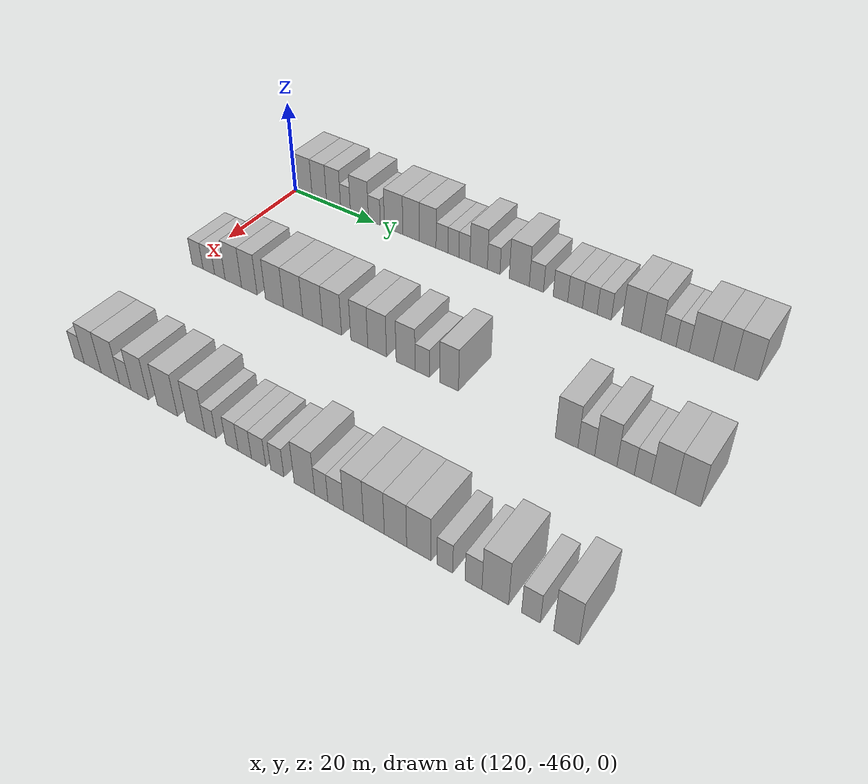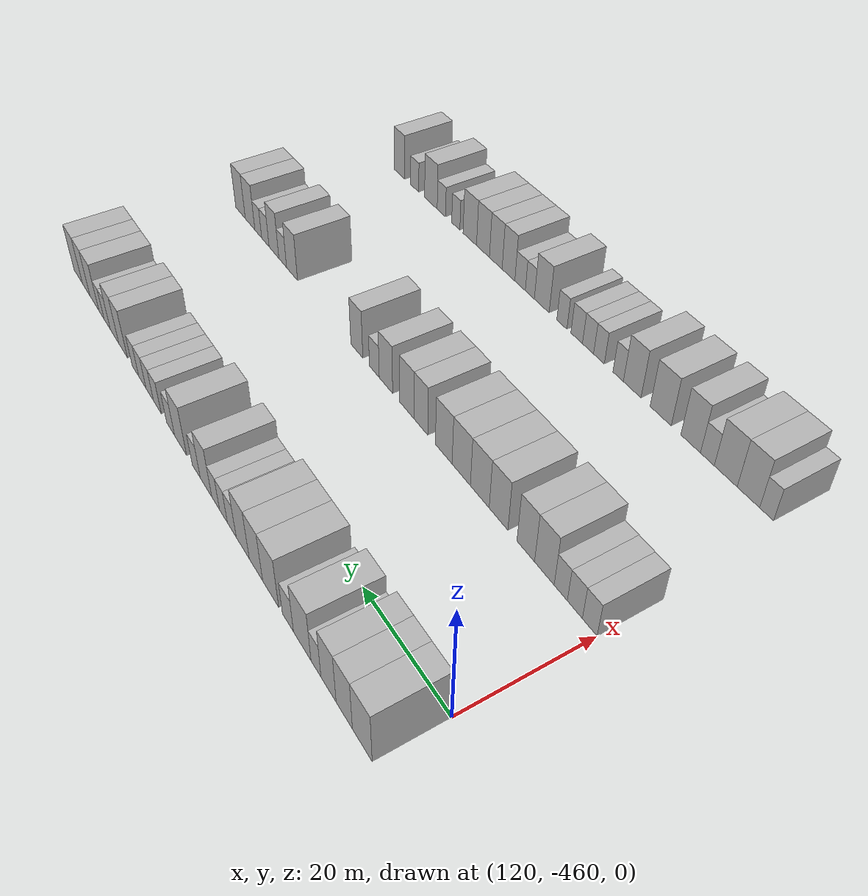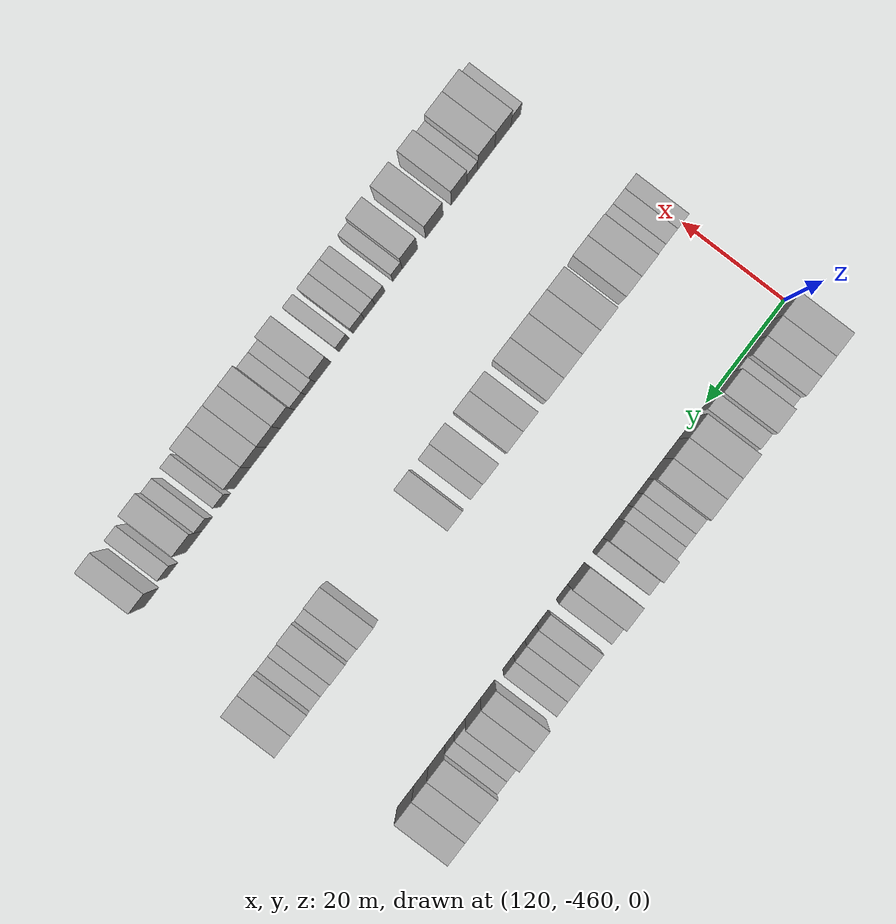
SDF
<sdf version="1.6">
 <world name="default">
  <model name="building_675">
   <static>1</static>
   <pose>115.0000 -457.8308 0 0.000000 0.000000 0.000000</pose>
   <link name="link">
    <pose>0 0 4.50 0 0 0</pose>
    <collision name="collision"><geometry><box><size>10.0000 4.3384 9.0000</size></box></geometry></collision>
    <visual name="visual">
     <cast_shadows>0</cast_shadows>
     <geometry><box><size>10.0000 4.3384 9.0000</size></box></geometry>
     <material>
      <script>
       <uri>model://HANNAS_wall/materials/scripts</uri>
       <uri>model://HANNAS_wall/materials/textures</uri>
       <name>vrc/HANNAS_wall</name>
      </script>
     </material>
    </visual>
   </link>
  </model>
  <model name="building_676">
   <static>1</static>
   <pose>115.0000 -453.7887 0 0.000000 0.000000 0.000000</pose>
   <link name="link">
    <pose>0 0 4.50 0 0 0</pose>
    <collision name="collision"><geometry><box><size>10.0000 3.7456 9.0000</size></box></geometry></collision>
    <visual name="visual">
     <cast_shadows>0</cast_shadows>
     <geometry><box><size>10.0000 3.7456 9.0000</size></box></geometry>
     <material>
      <script>
       <uri>model://HANNAS_wall/materials/scripts</uri>
       <uri>model://HANNAS_wall/materials/textures</uri>
       <name>vrc/HANNAS_wall</name>
      </script>
     </material>
    </visual>
   </link>
  </model>
  <model name="building_677">
   <static>1</static>
   <pose>115.0000 -450.1026 0 0.000000 0.000000 0.000000</pose>
   <link name="link">
    <pose>0 0 4.50 0 0 0</pose>
    <collision name="collision"><geometry><box><size>10.0000 3.6267 9.0000</size></box></geometry></collision>
    <visual name="visual">
     <cast_shadows>0</cast_shadows>
     <geometry><box><size>10.0000 3.6267 9.0000</size></box></geometry>
     <material>
      <script>
       <uri>model://HANNAS_wall/materials/scripts</uri>
       <uri>model://HANNAS_wall/materials/textures</uri>
       <name>vrc/HANNAS_wall</name>
      </script>
     </material>
    </visual>
   </link>
  </model>
  <model name="building_678">
   <static>1</static>
   <pose>115.0000 -447.0632 0 0.000000 0.000000 0.000000</pose>
   <link name="link">
    <pose>0 0 3.00 0 0 0</pose>
    <collision name="collision"><geometry><box><size>10.0000 2.4520 6.0000</size></box></geometry></collision>
    <visual name="visual">
     <cast_shadows>0</cast_shadows>
     <geometry><box><size>10.0000 2.4520 6.0000</size></box></geometry>
     <material>
      <script>
       <uri>model://HANNAS_wall/materials/scripts</uri>
       <uri>model://HANNAS_wall/materials/textures</uri>
       <name>vrc/HANNAS_wall</name>
      </script>
     </material>
    </visual>
   </link>
  </model>
  <model name="building_679">
   <static>1</static>
   <pose>115.0000 -443.5883 0 0.000000 0.000000 0.000000</pose>
   <link name="link">
    <pose>0 0 4.50 0 0 0</pose>
    <collision name="collision"><geometry><box><size>10.0000 4.4978 9.0000</size></box></geometry></collision>
    <visual name="visual">
     <cast_shadows>0</cast_shadows>
     <geometry><box><size>10.0000 4.4978 9.0000</size></box></geometry>
     <material>
      <script>
       <uri>model://HANNAS_wall/materials/scripts</uri>
       <uri>model://HANNAS_wall/materials/textures</uri>
       <name>vrc/HANNAS_wall</name>
      </script>
     </material>
    </visual>
   </link>
  </model>
  <model name="building_680">
   <static>1</static>
   <pose>115.0000 -439.8775 0 0.000000 0.000000 0.000000</pose>
   <link name="link">
    <pose>0 0 3.00 0 0 0</pose>
    <collision name="collision"><geometry><box><size>10.0000 2.9237 6.0000</size></box></geometry></collision>
    <visual name="visual">
     <cast_shadows>0</cast_shadows>
     <geometry><box><size>10.0000 2.9237 6.0000</size></box></geometry>
     <material>
      <script>
       <uri>model://HANNAS_wall/materials/scripts</uri>
       <uri>model://HANNAS_wall/materials/textures</uri>
       <name>vrc/HANNAS_wall</name>
      </script>
     </material>
    </visual>
   </link>
  </model>
  <model name="building_681">
   <static>1</static>
   <pose>115.0000 -435.1933 0 0.000000 0.000000 0.000000</pose>
   <link name="link">
    <pose>0 0 4.50 0 0 0</pose>
    <collision name="collision"><geometry><box><size>10.0000 4.4448 9.0000</size></box></geometry></collision>
    <visual name="visual">
     <cast_shadows>0</cast_shadows>
     <geometry><box><size>10.0000 4.4448 9.0000</size></box></geometry>
     <material>
      <script>
       <uri>model://HANNAS_wall/materials/scripts</uri>
       <uri>model://HANNAS_wall/materials/textures</uri>
       <name>vrc/HANNAS_wall</name>
      </script>
     </material>
    </visual>
   </link>
  </model>
  <model name="building_682">
   <static>1</static>
   <pose>115.0000 -431.0422 0 0.000000 0.000000 0.000000</pose>
   <link name="link">
    <pose>0 0 4.50 0 0 0</pose>
    <collision name="collision"><geometry><box><size>10.0000 3.8574 9.0000</size></box></geometry></collision>
    <visual name="visual">
     <cast_shadows>0</cast_shadows>
     <geometry><box><size>10.0000 3.8574 9.0000</size></box></geometry>
     <material>
      <script>
       <uri>model://HANNAS_wall/materials/scripts</uri>
       <uri>model://HANNAS_wall/materials/textures</uri>
       <name>vrc/HANNAS_wall</name>
      </script>
     </material>
    </visual>
   </link>
  </model>
  <model name="building_683">
   <static>1</static>
   <pose>115.0000 -427.1518 0 0.000000 0.000000 0.000000</pose>
   <link name="link">
    <pose>0 0 4.50 0 0 0</pose>
    <collision name="collision"><geometry><box><size>10.0000 3.9233 9.0000</size></box></geometry></collision>
    <visual name="visual">
     <cast_shadows>0</cast_shadows>
     <geometry><box><size>10.0000 3.9233 9.0000</size></box></geometry>
     <material>
      <script>
       <uri>model://HANNAS_wall/materials/scripts</uri>
       <uri>model://HANNAS_wall/materials/textures</uri>
       <name>vrc/HANNAS_wall</name>
      </script>
     </material>
    </visual>
   </link>
  </model>
  <model name="building_684">
   <static>1</static>
   <pose>115.0000 -423.8245 0 0.000000 0.000000 0.000000</pose>
   <link name="link">
    <pose>0 0 3.00 0 0 0</pose>
    <collision name="collision"><geometry><box><size>10.0000 2.7313 6.0000</size></box></geometry></collision>
    <visual name="visual">
     <cast_shadows>0</cast_shadows>
     <geometry><box><size>10.0000 2.7313 6.0000</size></box></geometry>
     <material>
      <script>
       <uri>model://HANNAS_wall/materials/scripts</uri>
       <uri>model://HANNAS_wall/materials/textures</uri>
       <name>vrc/HANNAS_wall</name>
      </script>
     </material>
    </visual>
   </link>
  </model>
  <model name="building_685">
   <static>1</static>
   <pose>115.0000 -421.2231 0 0.000000 0.000000 0.000000</pose>
   <link name="link">
    <pose>0 0 3.00 0 0 0</pose>
    <collision name="collision"><geometry><box><size>10.0000 2.4715 6.0000</size></box></geometry></collision>
    <visual name="visual">
     <cast_shadows>0</cast_shadows>
     <geometry><box><size>10.0000 2.4715 6.0000</size></box></geometry>
     <material>
      <script>
       <uri>model://HANNAS_wall/materials/scripts</uri>
       <uri>model://HANNAS_wall/materials/textures</uri>
       <name>vrc/HANNAS_wall</name>
      </script>
     </material>
    </visual>
   </link>
  </model>
  <model name="building_686">
   <static>1</static>
   <pose>115.0000 -418.7302 0 0.000000 0.000000 0.000000</pose>
   <link name="link">
    <pose>0 0 3.00 0 0 0</pose>
    <collision name="collision"><geometry><box><size>10.0000 2.5144 6.0000</size></box></geometry></collision>
    <visual name="visual">
     <cast_shadows>0</cast_shadows>
     <geometry><box><size>10.0000 2.5144 6.0000</size></box></geometry>
     <material>
      <script>
       <uri>model://HANNAS_wall/materials/scripts</uri>
       <uri>model://HANNAS_wall/materials/textures</uri>
       <name>vrc/HANNAS_wall</name>
      </script>
     </material>
    </visual>
   </link>
  </model>
  <model name="building_687">
   <static>1</static>
   <pose>115.0000 -415.5576 0 0.000000 0.000000 0.000000</pose>
   <link name="link">
    <pose>0 0 4.50 0 0 0</pose>
    <collision name="collision"><geometry><box><size>10.0000 3.8307 9.0000</size></box></geometry></collision>
    <visual name="visual">
     <cast_shadows>0</cast_shadows>
     <geometry><box><size>10.0000 3.8307 9.0000</size></box></geometry>
     <material>
      <script>
       <uri>model://HANNAS_wall/materials/scripts</uri>
       <uri>model://HANNAS_wall/materials/textures</uri>
       <name>vrc/HANNAS_wall</name>
      </script>
     </material>
    </visual>
   </link>
  </model>
  <model name="building_688">
   <static>1</static>
   <pose>115.0000 -412.2653 0 0.000000 0.000000 0.000000</pose>
   <link name="link">
    <pose>0 0 3.00 0 0 0</pose>
    <collision name="collision"><geometry><box><size>10.0000 2.7541 6.0000</size></box></geometry></collision>
    <visual name="visual">
     <cast_shadows>0</cast_shadows>
     <geometry><box><size>10.0000 2.7541 6.0000</size></box></geometry>
     <material>
      <script>
       <uri>model://HANNAS_wall/materials/scripts</uri>
       <uri>model://HANNAS_wall/materials/textures</uri>
       <name>vrc/HANNAS_wall</name>
      </script>
     </material>
    </visual>
   </link>
  </model>
  <model name="building_689">
   <static>1</static>
   <pose>115.0000 -406.7517 0 0.000000 0.000000 0.000000</pose>
   <link name="link">
    <pose>0 0 4.50 0 0 0</pose>
    <collision name="collision"><geometry><box><size>10.0000 4.2730 9.0000</size></box></geometry></collision>
    <visual name="visual">
     <cast_shadows>0</cast_shadows>
     <geometry><box><size>10.0000 4.2730 9.0000</size></box></geometry>
     <material>
      <script>
       <uri>model://HANNAS_wall/materials/scripts</uri>
       <uri>model://HANNAS_wall/materials/textures</uri>
       <name>vrc/HANNAS_wall</name>
      </script>
     </material>
    </visual>
   </link>
  </model>
  <model name="building_690">
   <static>1</static>
   <pose>115.0000 -403.1297 0 0.000000 0.000000 0.000000</pose>
   <link name="link">
    <pose>0 0 3.00 0 0 0</pose>
    <collision name="collision"><geometry><box><size>10.0000 2.9712 6.0000</size></box></geometry></collision>
    <visual name="visual">
     <cast_shadows>0</cast_shadows>
     <geometry><box><size>10.0000 2.9712 6.0000</size></box></geometry>
     <material>
      <script>
       <uri>model://HANNAS_wall/materials/scripts</uri>
       <uri>model://HANNAS_wall/materials/textures</uri>
       <name>vrc/HANNAS_wall</name>
      </script>
     </material>
    </visual>
   </link>
  </model>
  <model name="building_691">
   <static>1</static>
   <pose>115.0000 -398.1478 0 0.000000 0.000000 0.000000</pose>
   <link name="link">
    <pose>0 0 3.00 0 0 0</pose>
    <collision name="collision"><geometry><box><size>10.0000 2.9924 6.0000</size></box></geometry></collision>
    <visual name="visual">
     <cast_shadows>0</cast_shadows>
     <geometry><box><size>10.0000 2.9924 6.0000</size></box></geometry>
     <material>
      <script>
       <uri>model://HANNAS_wall/materials/scripts</uri>
       <uri>model://HANNAS_wall/materials/textures</uri>
       <name>vrc/HANNAS_wall</name>
      </script>
     </material>
    </visual>
   </link>
  </model>
  <model name="building_692">
   <static>1</static>
   <pose>115.0000 -395.1696 0 0.000000 0.000000 0.000000</pose>
   <link name="link">
    <pose>0 0 3.00 0 0 0</pose>
    <collision name="collision"><geometry><box><size>10.0000 2.9640 6.0000</size></box></geometry></collision>
    <visual name="visual">
     <cast_shadows>0</cast_shadows>
     <geometry><box><size>10.0000 2.9640 6.0000</size></box></geometry>
     <material>
      <script>
       <uri>model://HANNAS_wall/materials/scripts</uri>
       <uri>model://HANNAS_wall/materials/textures</uri>
       <name>vrc/HANNAS_wall</name>
      </script>
     </material>
    </visual>
   </link>
  </model>
  <model name="building_693">
   <static>1</static>
   <pose>115.0000 -392.2177 0 0.000000 0.000000 0.000000</pose>
   <link name="link">
    <pose>0 0 3.00 0 0 0</pose>
    <collision name="collision"><geometry><box><size>10.0000 2.9399 6.0000</size></box></geometry></collision>
    <visual name="visual">
     <cast_shadows>0</cast_shadows>
     <geometry><box><size>10.0000 2.9399 6.0000</size></box></geometry>
     <material>
      <script>
       <uri>model://HANNAS_wall/materials/scripts</uri>
       <uri>model://HANNAS_wall/materials/textures</uri>
       <name>vrc/HANNAS_wall</name>
      </script>
     </material>
    </visual>
   </link>
  </model>
  <model name="building_694">
   <static>1</static>
   <pose>115.0000 -389.3699 0 0.000000 0.000000 0.000000</pose>
   <link name="link">
    <pose>0 0 3.00 0 0 0</pose>
    <collision name="collision"><geometry><box><size>10.0000 2.7556 6.0000</size></box></geometry></collision>
    <visual name="visual">
     <cast_shadows>0</cast_shadows>
     <geometry><box><size>10.0000 2.7556 6.0000</size></box></geometry>
     <material>
      <script>
       <uri>model://HANNAS_wall/materials/scripts</uri>
       <uri>model://HANNAS_wall/materials/textures</uri>
       <name>vrc/HANNAS_wall</name>
      </script>
     </material>
    </visual>
   </link>
  </model>
  <model name="building_695">
   <static>1</static>
   <pose>115.0000 -384.1373 0 0.000000 0.000000 0.000000</pose>
   <link name="link">
    <pose>0 0 4.50 0 0 0</pose>
    <collision name="collision"><geometry><box><size>10.0000 3.7096 9.0000</size></box></geometry></collision>
    <visual name="visual">
     <cast_shadows>0</cast_shadows>
     <geometry><box><size>10.0000 3.7096 9.0000</size></box></geometry>
     <material>
      <script>
       <uri>model://HANNAS_wall/materials/scripts</uri>
       <uri>model://HANNAS_wall/materials/textures</uri>
       <name>vrc/HANNAS_wall</name>
      </script>
     </material>
    </visual>
   </link>
  </model>
  <model name="building_696">
   <static>1</static>
   <pose>115.0000 -380.4037 0 0.000000 0.000000 0.000000</pose>
   <link name="link">
    <pose>0 0 4.50 0 0 0</pose>
    <collision name="collision"><geometry><box><size>10.0000 3.7576 9.0000</size></box></geometry></collision>
    <visual name="visual">
     <cast_shadows>0</cast_shadows>
     <geometry><box><size>10.0000 3.7576 9.0000</size></box></geometry>
     <material>
      <script>
       <uri>model://HANNAS_wall/materials/scripts</uri>
       <uri>model://HANNAS_wall/materials/textures</uri>
       <name>vrc/HANNAS_wall</name>
      </script>
     </material>
    </visual>
   </link>
  </model>
  <model name="building_697">
   <static>1</static>
   <pose>115.0000 -377.1109 0 0.000000 0.000000 0.000000</pose>
   <link name="link">
    <pose>0 0 3.00 0 0 0</pose>
    <collision name="collision"><geometry><box><size>10.0000 2.8280 6.0000</size></box></geometry></collision>
    <visual name="visual">
     <cast_shadows>0</cast_shadows>
     <geometry><box><size>10.0000 2.8280 6.0000</size></box></geometry>
     <material>
      <script>
       <uri>model://HANNAS_wall/materials/scripts</uri>
       <uri>model://HANNAS_wall/materials/textures</uri>
       <name>vrc/HANNAS_wall</name>
      </script>
     </material>
    </visual>
   </link>
  </model>
  <model name="building_698">
   <static>1</static>
   <pose>115.0000 -374.4944 0 0.000000 0.000000 0.000000</pose>
   <link name="link">
    <pose>0 0 3.00 0 0 0</pose>
    <collision name="collision"><geometry><box><size>10.0000 2.4051 6.0000</size></box></geometry></collision>
    <visual name="visual">
     <cast_shadows>0</cast_shadows>
     <geometry><box><size>10.0000 2.4051 6.0000</size></box></geometry>
     <material>
      <script>
       <uri>model://HANNAS_wall/materials/scripts</uri>
       <uri>model://HANNAS_wall/materials/textures</uri>
       <name>vrc/HANNAS_wall</name>
      </script>
     </material>
    </visual>
   </link>
  </model>
  <model name="building_699">
   <static>1</static>
   <pose>115.0000 -371.1514 0 0.000000 0.000000 0.000000</pose>
   <link name="link">
    <pose>0 0 4.50 0 0 0</pose>
    <collision name="collision"><geometry><box><size>10.0000 4.2808 9.0000</size></box></geometry></collision>
    <visual name="visual">
     <cast_shadows>0</cast_shadows>
     <geometry><box><size>10.0000 4.2808 9.0000</size></box></geometry>
     <material>
      <script>
       <uri>model://HANNAS_wall/materials/scripts</uri>
       <uri>model://HANNAS_wall/materials/textures</uri>
       <name>vrc/HANNAS_wall</name>
      </script>
     </material>
    </visual>
   </link>
  </model>
  <model name="building_700">
   <static>1</static>
   <pose>115.0000 -367.1665 0 0.000000 0.000000 0.000000</pose>
   <link name="link">
    <pose>0 0 4.50 0 0 0</pose>
    <collision name="collision"><geometry><box><size>10.0000 3.6891 9.0000</size></box></geometry></collision>
    <visual name="visual">
     <cast_shadows>0</cast_shadows>
     <geometry><box><size>10.0000 3.6891 9.0000</size></box></geometry>
     <material>
      <script>
       <uri>model://HANNAS_wall/materials/scripts</uri>
       <uri>model://HANNAS_wall/materials/textures</uri>
       <name>vrc/HANNAS_wall</name>
      </script>
     </material>
    </visual>
   </link>
  </model>
  <model name="building_701">
   <static>1</static>
   <pose>115.0000 -363.2019 0 0.000000 0.000000 0.000000</pose>
   <link name="link">
    <pose>0 0 4.50 0 0 0</pose>
    <collision name="collision"><geometry><box><size>10.0000 4.2401 9.0000</size></box></geometry></collision>
    <visual name="visual">
     <cast_shadows>0</cast_shadows>
     <geometry><box><size>10.0000 4.2401 9.0000</size></box></geometry>
     <material>
      <script>
       <uri>model://HANNAS_wall/materials/scripts</uri>
       <uri>model://HANNAS_wall/materials/textures</uri>
       <name>vrc/HANNAS_wall</name>
      </script>
     </material>
    </visual>
   </link>
  </model>
  <model name="building_891">
   <static>1</static>
   <pose>145.0000 -458.6013 0 0.000000 0.000000 0.000000</pose>
   <link name="link">
    <pose>0 0 3.00 0 0 0</pose>
    <collision name="collision"><geometry><box><size>10.0000 2.7975 6.0000</size></box></geometry></collision>
    <visual name="visual">
     <cast_shadows>0</cast_shadows>
     <geometry><box><size>10.0000 2.7975 6.0000</size></box></geometry>
     <material>
      <script>
       <uri>model://HANNAS_wall/materials/scripts</uri>
       <uri>model://HANNAS_wall/materials/textures</uri>
       <name>vrc/HANNAS_wall</name>
      </script>
     </material>
    </visual>
   </link>
  </model>
  <model name="building_892">
   <static>1</static>
   <pose>145.0000 -455.7341 0 0.000000 0.000000 0.000000</pose>
   <link name="link">
    <pose>0 0 3.00 0 0 0</pose>
    <collision name="collision"><geometry><box><size>10.0000 2.9368 6.0000</size></box></geometry></collision>
    <visual name="visual">
     <cast_shadows>0</cast_shadows>
     <geometry><box><size>10.0000 2.9368 6.0000</size></box></geometry>
     <material>
      <script>
       <uri>model://HANNAS_wall/materials/scripts</uri>
       <uri>model://HANNAS_wall/materials/textures</uri>
       <name>vrc/HANNAS_wall</name>
      </script>
     </material>
    </visual>
   </link>
  </model>
  <model name="building_893">
   <static>1</static>
   <pose>145.0000 -452.9495 0 0.000000 0.000000 0.000000</pose>
   <link name="link">
    <pose>0 0 3.00 0 0 0</pose>
    <collision name="collision"><geometry><box><size>10.0000 2.6323 6.0000</size></box></geometry></collision>
    <visual name="visual">
     <cast_shadows>0</cast_shadows>
     <geometry><box><size>10.0000 2.6323 6.0000</size></box></geometry>
     <material>
      <script>
       <uri>model://HANNAS_wall/materials/scripts</uri>
       <uri>model://HANNAS_wall/materials/textures</uri>
       <name>vrc/HANNAS_wall</name>
      </script>
     </material>
    </visual>
   </link>
  </model>
  <model name="building_894">
   <static>1</static>
   <pose>145.0000 -449.6103 0 0.000000 0.000000 0.000000</pose>
   <link name="link">
    <pose>0 0 4.50 0 0 0</pose>
    <collision name="collision"><geometry><box><size>10.0000 4.0462 9.0000</size></box></geometry></collision>
    <visual name="visual">
     <cast_shadows>0</cast_shadows>
     <geometry><box><size>10.0000 4.0462 9.0000</size></box></geometry>
     <material>
      <script>
       <uri>model://HANNAS_wall/materials/scripts</uri>
       <uri>model://HANNAS_wall/materials/textures</uri>
       <name>vrc/HANNAS_wall</name>
      </script>
     </material>
    </visual>
   </link>
  </model>
  <model name="building_895">
   <static>1</static>
   <pose>145.0000 -445.7002 0 0.000000 0.000000 0.000000</pose>
   <link name="link">
    <pose>0 0 4.50 0 0 0</pose>
    <collision name="collision"><geometry><box><size>10.0000 3.7741 9.0000</size></box></geometry></collision>
    <visual name="visual">
     <cast_shadows>0</cast_shadows>
     <geometry><box><size>10.0000 3.7741 9.0000</size></box></geometry>
     <material>
      <script>
       <uri>model://HANNAS_wall/materials/scripts</uri>
       <uri>model://HANNAS_wall/materials/textures</uri>
       <name>vrc/HANNAS_wall</name>
      </script>
     </material>
    </visual>
   </link>
  </model>
  <model name="building_896">
   <static>1</static>
   <pose>145.0000 -439.6964 0 0.000000 0.000000 0.000000</pose>
   <link name="link">
    <pose>0 0 4.50 0 0 0</pose>
    <collision name="collision"><geometry><box><size>10.0000 4.2335 9.0000</size></box></geometry></collision>
    <visual name="visual">
     <cast_shadows>0</cast_shadows>
     <geometry><box><size>10.0000 4.2335 9.0000</size></box></geometry>
     <material>
      <script>
       <uri>model://HANNAS_wall/materials/scripts</uri>
       <uri>model://HANNAS_wall/materials/textures</uri>
       <name>vrc/HANNAS_wall</name>
      </script>
     </material>
    </visual>
   </link>
  </model>
  <model name="building_897">
   <static>1</static>
   <pose>145.0000 -435.3608 0 0.000000 0.000000 0.000000</pose>
   <link name="link">
    <pose>0 0 4.50 0 0 0</pose>
    <collision name="collision"><geometry><box><size>10.0000 4.4377 9.0000</size></box></geometry></collision>
    <visual name="visual">
     <cast_shadows>0</cast_shadows>
     <geometry><box><size>10.0000 4.4377 9.0000</size></box></geometry>
     <material>
      <script>
       <uri>model://HANNAS_wall/materials/scripts</uri>
       <uri>model://HANNAS_wall/materials/textures</uri>
       <name>vrc/HANNAS_wall</name>
      </script>
     </material>
    </visual>
   </link>
  </model>
  <model name="building_898">
   <static>1</static>
   <pose>145.0000 -430.9032 0 0.000000 0.000000 0.000000</pose>
   <link name="link">
    <pose>0 0 4.50 0 0 0</pose>
    <collision name="collision"><geometry><box><size>10.0000 4.4775 9.0000</size></box></geometry></collision>
    <visual name="visual">
     <cast_shadows>0</cast_shadows>
     <geometry><box><size>10.0000 4.4775 9.0000</size></box></geometry>
     <material>
      <script>
       <uri>model://HANNAS_wall/materials/scripts</uri>
       <uri>model://HANNAS_wall/materials/textures</uri>
       <name>vrc/HANNAS_wall</name>
      </script>
     </material>
    </visual>
   </link>
  </model>
  <model name="building_899">
   <static>1</static>
   <pose>145.0000 -426.5446 0 0.000000 0.000000 0.000000</pose>
   <link name="link">
    <pose>0 0 4.50 0 0 0</pose>
    <collision name="collision"><geometry><box><size>10.0000 4.2397 9.0000</size></box></geometry></collision>
    <visual name="visual">
     <cast_shadows>0</cast_shadows>
     <geometry><box><size>10.0000 4.2397 9.0000</size></box></geometry>
     <material>
      <script>
       <uri>model://HANNAS_wall/materials/scripts</uri>
       <uri>model://HANNAS_wall/materials/textures</uri>
       <name>vrc/HANNAS_wall</name>
      </script>
     </material>
    </visual>
   </link>
  </model>
  <model name="building_900">
   <static>1</static>
   <pose>145.0000 -420.5895 0 0.000000 0.000000 0.000000</pose>
   <link name="link">
    <pose>0 0 4.50 0 0 0</pose>
    <collision name="collision"><geometry><box><size>10.0000 3.6705 9.0000</size></box></geometry></collision>
    <visual name="visual">
     <cast_shadows>0</cast_shadows>
     <geometry><box><size>10.0000 3.6705 9.0000</size></box></geometry>
     <material>
      <script>
       <uri>model://HANNAS_wall/materials/scripts</uri>
       <uri>model://HANNAS_wall/materials/textures</uri>
       <name>vrc/HANNAS_wall</name>
      </script>
     </material>
    </visual>
   </link>
  </model>
  <model name="building_901">
   <static>1</static>
   <pose>145.0000 -416.7820 0 0.000000 0.000000 0.000000</pose>
   <link name="link">
    <pose>0 0 4.50 0 0 0</pose>
    <collision name="collision"><geometry><box><size>10.0000 3.9446 9.0000</size></box></geometry></collision>
    <visual name="visual">
     <cast_shadows>0</cast_shadows>
     <geometry><box><size>10.0000 3.9446 9.0000</size></box></geometry>
     <material>
      <script>
       <uri>model://HANNAS_wall/materials/scripts</uri>
       <uri>model://HANNAS_wall/materials/textures</uri>
       <name>vrc/HANNAS_wall</name>
      </script>
     </material>
    </visual>
   </link>
  </model>
  <model name="building_902">
   <static>1</static>
   <pose>145.0000 -410.8734 0 0.000000 0.000000 0.000000</pose>
   <link name="link">
    <pose>0 0 4.50 0 0 0</pose>
    <collision name="collision"><geometry><box><size>10.0000 3.8726 9.0000</size></box></geometry></collision>
    <visual name="visual">
     <cast_shadows>0</cast_shadows>
     <geometry><box><size>10.0000 3.8726 9.0000</size></box></geometry>
     <material>
      <script>
       <uri>model://HANNAS_wall/materials/scripts</uri>
       <uri>model://HANNAS_wall/materials/textures</uri>
       <name>vrc/HANNAS_wall</name>
      </script>
     </material>
    </visual>
   </link>
  </model>
  <model name="building_903">
   <static>1</static>
   <pose>145.0000 -407.4782 0 0.000000 0.000000 0.000000</pose>
   <link name="link">
    <pose>0 0 3.00 0 0 0</pose>
    <collision name="collision"><geometry><box><size>10.0000 2.9178 6.0000</size></box></geometry></collision>
    <visual name="visual">
     <cast_shadows>0</cast_shadows>
     <geometry><box><size>10.0000 2.9178 6.0000</size></box></geometry>
     <material>
      <script>
       <uri>model://HANNAS_wall/materials/scripts</uri>
       <uri>model://HANNAS_wall/materials/textures</uri>
       <name>vrc/HANNAS_wall</name>
      </script>
     </material>
    </visual>
   </link>
  </model>
  <model name="building_904">
   <static>1</static>
   <pose>145.0000 -402.1710 0 0.000000 0.000000 0.000000</pose>
   <link name="link">
    <pose>0 0 4.50 0 0 0</pose>
    <collision name="collision"><geometry><box><size>10.0000 3.6966 9.0000</size></box></geometry></collision>
    <visual name="visual">
     <cast_shadows>0</cast_shadows>
     <geometry><box><size>10.0000 3.6966 9.0000</size></box></geometry>
     <material>
      <script>
       <uri>model://HANNAS_wall/materials/scripts</uri>
       <uri>model://HANNAS_wall/materials/textures</uri>
       <name>vrc/HANNAS_wall</name>
      </script>
     </material>
    </visual>
   </link>
  </model>
  <model name="building_905">
   <static>1</static>
   <pose>145.0000 -380.3616 0 0.000000 0.000000 0.000000</pose>
   <link name="link">
    <pose>0 0 4.50 0 0 0</pose>
    <collision name="collision"><geometry><box><size>10.0000 3.9740 9.0000</size></box></geometry></collision>
    <visual name="visual">
     <cast_shadows>0</cast_shadows>
     <geometry><box><size>10.0000 3.9740 9.0000</size></box></geometry>
     <material>
      <script>
       <uri>model://HANNAS_wall/materials/scripts</uri>
       <uri>model://HANNAS_wall/materials/textures</uri>
       <name>vrc/HANNAS_wall</name>
      </script>
     </material>
    </visual>
   </link>
  </model>
  <model name="building_906">
   <static>1</static>
   <pose>145.0000 -376.9349 0 0.000000 0.000000 0.000000</pose>
   <link name="link">
    <pose>0 0 3.00 0 0 0</pose>
    <collision name="collision"><geometry><box><size>10.0000 2.8795 6.0000</size></box></geometry></collision>
    <visual name="visual">
     <cast_shadows>0</cast_shadows>
     <geometry><box><size>10.0000 2.8795 6.0000</size></box></geometry>
     <material>
      <script>
       <uri>model://HANNAS_wall/materials/scripts</uri>
       <uri>model://HANNAS_wall/materials/textures</uri>
       <name>vrc/HANNAS_wall</name>
      </script>
     </material>
    </visual>
   </link>
  </model>
  <model name="building_907">
   <static>1</static>
   <pose>145.0000 -373.6209 0 0.000000 0.000000 0.000000</pose>
   <link name="link">
    <pose>0 0 4.50 0 0 0</pose>
    <collision name="collision"><geometry><box><size>10.0000 3.7486 9.0000</size></box></geometry></collision>
    <visual name="visual">
     <cast_shadows>0</cast_shadows>
     <geometry><box><size>10.0000 3.7486 9.0000</size></box></geometry>
     <material>
      <script>
       <uri>model://HANNAS_wall/materials/scripts</uri>
       <uri>model://HANNAS_wall/materials/textures</uri>
       <name>vrc/HANNAS_wall</name>
      </script>
     </material>
    </visual>
   </link>
  </model>
  <model name="building_908">
   <static>1</static>
   <pose>145.0000 -370.2977 0 0.000000 0.000000 0.000000</pose>
   <link name="link">
    <pose>0 0 3.00 0 0 0</pose>
    <collision name="collision"><geometry><box><size>10.0000 2.8978 6.0000</size></box></geometry></collision>
    <visual name="visual">
     <cast_shadows>0</cast_shadows>
     <geometry><box><size>10.0000 2.8978 6.0000</size></box></geometry>
     <material>
      <script>
       <uri>model://HANNAS_wall/materials/scripts</uri>
       <uri>model://HANNAS_wall/materials/textures</uri>
       <name>vrc/HANNAS_wall</name>
      </script>
     </material>
    </visual>
   </link>
  </model>
  <model name="building_909">
   <static>1</static>
   <pose>145.0000 -367.4951 0 0.000000 0.000000 0.000000</pose>
   <link name="link">
    <pose>0 0 3.00 0 0 0</pose>
    <collision name="collision"><geometry><box><size>10.0000 2.7075 6.0000</size></box></geometry></collision>
    <visual name="visual">
     <cast_shadows>0</cast_shadows>
     <geometry><box><size>10.0000 2.7075 6.0000</size></box></geometry>
     <material>
      <script>
       <uri>model://HANNAS_wall/materials/scripts</uri>
       <uri>model://HANNAS_wall/materials/textures</uri>
       <name>vrc/HANNAS_wall</name>
      </script>
     </material>
    </visual>
   </link>
  </model>
  <model name="building_910">
   <static>1</static>
   <pose>145.0000 -364.1869 0 0.000000 0.000000 0.000000</pose>
   <link name="link">
    <pose>0 0 4.50 0 0 0</pose>
    <collision name="collision"><geometry><box><size>10.0000 3.9088 9.0000</size></box></geometry></collision>
    <visual name="visual">
     <cast_shadows>0</cast_shadows>
     <geometry><box><size>10.0000 3.9088 9.0000</size></box></geometry>
     <material>
      <script>
       <uri>model://HANNAS_wall/materials/scripts</uri>
       <uri>model://HANNAS_wall/materials/textures</uri>
       <name>vrc/HANNAS_wall</name>
      </script>
     </material>
    </visual>
   </link>
  </model>
  <model name="building_911">
   <static>1</static>
   <pose>145.0000 -360.2446 0 0.000000 0.000000 0.000000</pose>
   <link name="link">
    <pose>0 0 4.50 0 0 0</pose>
    <collision name="collision"><geometry><box><size>10.0000 3.9759 9.0000</size></box></geometry></collision>
    <visual name="visual">
     <cast_shadows>0</cast_shadows>
     <geometry><box><size>10.0000 3.9759 9.0000</size></box></geometry>
     <material>
      <script>
       <uri>model://HANNAS_wall/materials/scripts</uri>
       <uri>model://HANNAS_wall/materials/textures</uri>
       <name>vrc/HANNAS_wall</name>
      </script>
     </material>
    </visual>
   </link>
  </model>
  <model name="building_1121">
   <static>1</static>
   <pose>175.0000 -456.7553 0 0.000000 0.000000 0.000000</pose>
   <link name="link">
    <pose>0 0 3.00 0 0 0</pose>
    <collision name="collision"><geometry><box><size>10.0000 2.4895 6.0000</size></box></geometry></collision>
    <visual name="visual">
     <cast_shadows>0</cast_shadows>
     <geometry><box><size>10.0000 2.4895 6.0000</size></box></geometry>
     <material>
      <script>
       <uri>model://HANNAS_wall/materials/scripts</uri>
       <uri>model://HANNAS_wall/materials/textures</uri>
       <name>vrc/HANNAS_wall</name>
      </script>
     </material>
    </visual>
   </link>
  </model>
  <model name="building_1122">
   <static>1</static>
   <pose>175.0000 -453.4456 0 0.000000 0.000000 0.000000</pose>
   <link name="link">
    <pose>0 0 4.50 0 0 0</pose>
    <collision name="collision"><geometry><box><size>10.0000 4.1299 9.0000</size></box></geometry></collision>
    <visual name="visual">
     <cast_shadows>0</cast_shadows>
     <geometry><box><size>10.0000 4.1299 9.0000</size></box></geometry>
     <material>
      <script>
       <uri>model://HANNAS_wall/materials/scripts</uri>
       <uri>model://HANNAS_wall/materials/textures</uri>
       <name>vrc/HANNAS_wall</name>
      </script>
     </material>
    </visual>
   </link>
  </model>
  <model name="building_1123">
   <static>1</static>
   <pose>175.0000 -449.2012 0 0.000000 0.000000 0.000000</pose>
   <link name="link">
    <pose>0 0 4.50 0 0 0</pose>
    <collision name="collision"><geometry><box><size>10.0000 4.3588 9.0000</size></box></geometry></collision>
    <visual name="visual">
     <cast_shadows>0</cast_shadows>
     <geometry><box><size>10.0000 4.3588 9.0000</size></box></geometry>
     <material>
      <script>
       <uri>model://HANNAS_wall/materials/scripts</uri>
       <uri>model://HANNAS_wall/materials/textures</uri>
       <name>vrc/HANNAS_wall</name>
      </script>
     </material>
    </visual>
   </link>
  </model>
  <model name="building_1124">
   <static>1</static>
   <pose>175.0000 -445.6620 0 0.000000 0.000000 0.000000</pose>
   <link name="link">
    <pose>0 0 3.00 0 0 0</pose>
    <collision name="collision"><geometry><box><size>10.0000 2.7197 6.0000</size></box></geometry></collision>
    <visual name="visual">
     <cast_shadows>0</cast_shadows>
     <geometry><box><size>10.0000 2.7197 6.0000</size></box></geometry>
     <material>
      <script>
       <uri>model://HANNAS_wall/materials/scripts</uri>
       <uri>model://HANNAS_wall/materials/textures</uri>
       <name>vrc/HANNAS_wall</name>
      </script>
     </material>
    </visual>
   </link>
  </model>
  <model name="building_1125">
   <static>1</static>
   <pose>175.0000 -442.3171 0 0.000000 0.000000 0.000000</pose>
   <link name="link">
    <pose>0 0 4.50 0 0 0</pose>
    <collision name="collision"><geometry><box><size>10.0000 3.9701 9.0000</size></box></geometry></collision>
    <visual name="visual">
     <cast_shadows>0</cast_shadows>
     <geometry><box><size>10.0000 3.9701 9.0000</size></box></geometry>
     <material>
      <script>
       <uri>model://HANNAS_wall/materials/scripts</uri>
       <uri>model://HANNAS_wall/materials/textures</uri>
       <name>vrc/HANNAS_wall</name>
      </script>
     </material>
    </visual>
   </link>
  </model>
  <model name="building_1126">
   <static>1</static>
   <pose>175.0000 -436.0860 0 0.000000 0.000000 0.000000</pose>
   <link name="link">
    <pose>0 0 4.50 0 0 0</pose>
    <collision name="collision"><geometry><box><size>10.0000 4.4921 9.0000</size></box></geometry></collision>
    <visual name="visual">
     <cast_shadows>0</cast_shadows>
     <geometry><box><size>10.0000 4.4921 9.0000</size></box></geometry>
     <material>
      <script>
       <uri>model://HANNAS_wall/materials/scripts</uri>
       <uri>model://HANNAS_wall/materials/textures</uri>
       <name>vrc/HANNAS_wall</name>
      </script>
     </material>
    </visual>
   </link>
  </model>
  <model name="building_1127">
   <static>1</static>
   <pose>175.0000 -429.8610 0 0.000000 0.000000 0.000000</pose>
   <link name="link">
    <pose>0 0 4.50 0 0 0</pose>
    <collision name="collision"><geometry><box><size>10.0000 3.9579 9.0000</size></box></geometry></collision>
    <visual name="visual">
     <cast_shadows>0</cast_shadows>
     <geometry><box><size>10.0000 3.9579 9.0000</size></box></geometry>
     <material>
      <script>
       <uri>model://HANNAS_wall/materials/scripts</uri>
       <uri>model://HANNAS_wall/materials/textures</uri>
       <name>vrc/HANNAS_wall</name>
      </script>
     </material>
    </visual>
   </link>
  </model>
  <model name="building_1128">
   <static>1</static>
   <pose>175.0000 -426.6762 0 0.000000 0.000000 0.000000</pose>
   <link name="link">
    <pose>0 0 3.00 0 0 0</pose>
    <collision name="collision"><geometry><box><size>10.0000 2.4116 6.0000</size></box></geometry></collision>
    <visual name="visual">
     <cast_shadows>0</cast_shadows>
     <geometry><box><size>10.0000 2.4116 6.0000</size></box></geometry>
     <material>
      <script>
       <uri>model://HANNAS_wall/materials/scripts</uri>
       <uri>model://HANNAS_wall/materials/textures</uri>
       <name>vrc/HANNAS_wall</name>
      </script>
     </material>
    </visual>
   </link>
  </model>
  <model name="building_1129">
   <static>1</static>
   <pose>175.0000 -422.1872 0 0.000000 0.000000 0.000000</pose>
   <link name="link">
    <pose>0 0 3.00 0 0 0</pose>
    <collision name="collision"><geometry><box><size>10.0000 2.5664 6.0000</size></box></geometry></collision>
    <visual name="visual">
     <cast_shadows>0</cast_shadows>
     <geometry><box><size>10.0000 2.5664 6.0000</size></box></geometry>
     <material>
      <script>
       <uri>model://HANNAS_wall/materials/scripts</uri>
       <uri>model://HANNAS_wall/materials/textures</uri>
       <name>vrc/HANNAS_wall</name>
      </script>
     </material>
    </visual>
   </link>
  </model>
  <model name="building_1130">
   <static>1</static>
   <pose>175.0000 -419.5517 0 0.000000 0.000000 0.000000</pose>
   <link name="link">
    <pose>0 0 3.00 0 0 0</pose>
    <collision name="collision"><geometry><box><size>10.0000 2.7046 6.0000</size></box></geometry></collision>
    <visual name="visual">
     <cast_shadows>0</cast_shadows>
     <geometry><box><size>10.0000 2.7046 6.0000</size></box></geometry>
     <material>
      <script>
       <uri>model://HANNAS_wall/materials/scripts</uri>
       <uri>model://HANNAS_wall/materials/textures</uri>
       <name>vrc/HANNAS_wall</name>
      </script>
     </material>
    </visual>
   </link>
  </model>
  <model name="building_1131">
   <static>1</static>
   <pose>175.0000 -416.7610 0 0.000000 0.000000 0.000000</pose>
   <link name="link">
    <pose>0 0 3.00 0 0 0</pose>
    <collision name="collision"><geometry><box><size>10.0000 2.8767 6.0000</size></box></geometry></collision>
    <visual name="visual">
     <cast_shadows>0</cast_shadows>
     <geometry><box><size>10.0000 2.8767 6.0000</size></box></geometry>
     <material>
      <script>
       <uri>model://HANNAS_wall/materials/scripts</uri>
       <uri>model://HANNAS_wall/materials/textures</uri>
       <name>vrc/HANNAS_wall</name>
      </script>
     </material>
    </visual>
   </link>
  </model>
  <model name="building_1132">
   <static>1</static>
   <pose>175.0000 -413.0301 0 0.000000 0.000000 0.000000</pose>
   <link name="link">
    <pose>0 0 3.00 0 0 0</pose>
    <collision name="collision"><geometry><box><size>10.0000 2.5852 6.0000</size></box></geometry></collision>
    <visual name="visual">
     <cast_shadows>0</cast_shadows>
     <geometry><box><size>10.0000 2.5852 6.0000</size></box></geometry>
     <material>
      <script>
       <uri>model://HANNAS_wall/materials/scripts</uri>
       <uri>model://HANNAS_wall/materials/textures</uri>
       <name>vrc/HANNAS_wall</name>
      </script>
     </material>
    </visual>
   </link>
  </model>
  <model name="building_1133">
   <static>1</static>
   <pose>175.0000 -407.7707 0 0.000000 0.000000 0.000000</pose>
   <link name="link">
    <pose>0 0 4.50 0 0 0</pose>
    <collision name="collision"><geometry><box><size>10.0000 3.9336 9.0000</size></box></geometry></collision>
    <visual name="visual">
     <cast_shadows>0</cast_shadows>
     <geometry><box><size>10.0000 3.9336 9.0000</size></box></geometry>
     <material>
      <script>
       <uri>model://HANNAS_wall/materials/scripts</uri>
       <uri>model://HANNAS_wall/materials/textures</uri>
       <name>vrc/HANNAS_wall</name>
      </script>
     </material>
    </visual>
   </link>
  </model>
  <model name="building_1134">
   <static>1</static>
   <pose>175.0000 -404.5737 0 0.000000 0.000000 0.000000</pose>
   <link name="link">
    <pose>0 0 3.00 0 0 0</pose>
    <collision name="collision"><geometry><box><size>10.0000 2.4605 6.0000</size></box></geometry></collision>
    <visual name="visual">
     <cast_shadows>0</cast_shadows>
     <geometry><box><size>10.0000 2.4605 6.0000</size></box></geometry>
     <material>
      <script>
       <uri>model://HANNAS_wall/materials/scripts</uri>
       <uri>model://HANNAS_wall/materials/textures</uri>
       <name>vrc/HANNAS_wall</name>
      </script>
     </material>
    </visual>
   </link>
  </model>
  <model name="building_1135">
   <static>1</static>
   <pose>175.0000 -401.8924 0 0.000000 0.000000 0.000000</pose>
   <link name="link">
    <pose>0 0 3.00 0 0 0</pose>
    <collision name="collision"><geometry><box><size>10.0000 2.9022 6.0000</size></box></geometry></collision>
    <visual name="visual">
     <cast_shadows>0</cast_shadows>
     <geometry><box><size>10.0000 2.9022 6.0000</size></box></geometry>
     <material>
      <script>
       <uri>model://HANNAS_wall/materials/scripts</uri>
       <uri>model://HANNAS_wall/materials/textures</uri>
       <name>vrc/HANNAS_wall</name>
      </script>
     </material>
    </visual>
   </link>
  </model>
  <model name="building_1136">
   <static>1</static>
   <pose>175.0000 -398.6290 0 0.000000 0.000000 0.000000</pose>
   <link name="link">
    <pose>0 0 4.50 0 0 0</pose>
    <collision name="collision"><geometry><box><size>10.0000 3.6245 9.0000</size></box></geometry></collision>
    <visual name="visual">
     <cast_shadows>0</cast_shadows>
     <geometry><box><size>10.0000 3.6245 9.0000</size></box></geometry>
     <material>
      <script>
       <uri>model://HANNAS_wall/materials/scripts</uri>
       <uri>model://HANNAS_wall/materials/textures</uri>
       <name>vrc/HANNAS_wall</name>
      </script>
     </material>
    </visual>
   </link>
  </model>
  <model name="building_1137">
   <static>1</static>
   <pose>175.0000 -394.9659 0 0.000000 0.000000 0.000000</pose>
   <link name="link">
    <pose>0 0 4.50 0 0 0</pose>
    <collision name="collision"><geometry><box><size>10.0000 3.7017 9.0000</size></box></geometry></collision>
    <visual name="visual">
     <cast_shadows>0</cast_shadows>
     <geometry><box><size>10.0000 3.7017 9.0000</size></box></geometry>
     <material>
      <script>
       <uri>model://HANNAS_wall/materials/scripts</uri>
       <uri>model://HANNAS_wall/materials/textures</uri>
       <name>vrc/HANNAS_wall</name>
      </script>
     </material>
    </visual>
   </link>
  </model>
  <model name="building_1138">
   <static>1</static>
   <pose>175.0000 -391.1810 0 0.000000 0.000000 0.000000</pose>
   <link name="link">
    <pose>0 0 4.50 0 0 0</pose>
    <collision name="collision"><geometry><box><size>10.0000 3.8680 9.0000</size></box></geometry></collision>
    <visual name="visual">
     <cast_shadows>0</cast_shadows>
     <geometry><box><size>10.0000 3.8680 9.0000</size></box></geometry>
     <material>
      <script>
       <uri>model://HANNAS_wall/materials/scripts</uri>
       <uri>model://HANNAS_wall/materials/textures</uri>
       <name>vrc/HANNAS_wall</name>
      </script>
     </material>
    </visual>
   </link>
  </model>
  <model name="building_1139">
   <static>1</static>
   <pose>175.0000 -387.1708 0 0.000000 0.000000 0.000000</pose>
   <link name="link">
    <pose>0 0 4.50 0 0 0</pose>
    <collision name="collision"><geometry><box><size>10.0000 4.1524 9.0000</size></box></geometry></collision>
    <visual name="visual">
     <cast_shadows>0</cast_shadows>
     <geometry><box><size>10.0000 4.1524 9.0000</size></box></geometry>
     <material>
      <script>
       <uri>model://HANNAS_wall/materials/scripts</uri>
       <uri>model://HANNAS_wall/materials/textures</uri>
       <name>vrc/HANNAS_wall</name>
      </script>
     </material>
    </visual>
   </link>
  </model>
  <model name="building_1140">
   <static>1</static>
   <pose>175.0000 -382.8035 0 0.000000 0.000000 0.000000</pose>
   <link name="link">
    <pose>0 0 3.00 0 0 0</pose>
    <collision name="collision"><geometry><box><size>10.0000 2.5822 6.0000</size></box></geometry></collision>
    <visual name="visual">
     <cast_shadows>0</cast_shadows>
     <geometry><box><size>10.0000 2.5822 6.0000</size></box></geometry>
     <material>
      <script>
       <uri>model://HANNAS_wall/materials/scripts</uri>
       <uri>model://HANNAS_wall/materials/textures</uri>
       <name>vrc/HANNAS_wall</name>
      </script>
     </material>
    </visual>
   </link>
  </model>
  <model name="building_1141">
   <static>1</static>
   <pose>175.0000 -378.1526 0 0.000000 0.000000 0.000000</pose>
   <link name="link">
    <pose>0 0 3.00 0 0 0</pose>
    <collision name="collision"><geometry><box><size>10.0000 2.7197 6.0000</size></box></geometry></collision>
    <visual name="visual">
     <cast_shadows>0</cast_shadows>
     <geometry><box><size>10.0000 2.7197 6.0000</size></box></geometry>
     <material>
      <script>
       <uri>model://HANNAS_wall/materials/scripts</uri>
       <uri>model://HANNAS_wall/materials/textures</uri>
       <name>vrc/HANNAS_wall</name>
      </script>
     </material>
    </visual>
   </link>
  </model>
  <model name="building_1142">
   <static>1</static>
   <pose>175.0000 -374.6907 0 0.000000 0.000000 0.000000</pose>
   <link name="link">
    <pose>0 0 4.50 0 0 0</pose>
    <collision name="collision"><geometry><box><size>10.0000 4.2040 9.0000</size></box></geometry></collision>
    <visual name="visual">
     <cast_shadows>0</cast_shadows>
     <geometry><box><size>10.0000 4.2040 9.0000</size></box></geometry>
     <material>
      <script>
       <uri>model://HANNAS_wall/materials/scripts</uri>
       <uri>model://HANNAS_wall/materials/textures</uri>
       <name>vrc/HANNAS_wall</name>
      </script>
     </material>
    </visual>
   </link>
  </model>
  <model name="building_1143">
   <static>1</static>
   <pose>175.0000 -369.1654 0 0.000000 0.000000 0.000000</pose>
   <link name="link">
    <pose>0 0 3.00 0 0 0</pose>
    <collision name="collision"><geometry><box><size>10.0000 2.8468 6.0000</size></box></geometry></collision>
    <visual name="visual">
     <cast_shadows>0</cast_shadows>
     <geometry><box><size>10.0000 2.8468 6.0000</size></box></geometry>
     <material>
      <script>
       <uri>model://HANNAS_wall/materials/scripts</uri>
       <uri>model://HANNAS_wall/materials/textures</uri>
       <name>vrc/HANNAS_wall</name>
      </script>
     </material>
    </visual>
   </link>
  </model>
  <model name="building_1144">
   <static>1</static>
   <pose>175.0000 -363.8739 0 0.000000 0.000000 0.000000</pose>
   <link name="link">
    <pose>0 0 4.50 0 0 0</pose>
    <collision name="collision"><geometry><box><size>10.0000 3.7362 9.0000</size></box></geometry></collision>
    <visual name="visual">
     <cast_shadows>0</cast_shadows>
     <geometry><box><size>10.0000 3.7362 9.0000</size></box></geometry>
     <material>
      <script>
       <uri>model://HANNAS_wall/materials/scripts</uri>
       <uri>model://HANNAS_wall/materials/textures</uri>
       <name>vrc/HANNAS_wall</name>
      </script>
     </material>
    </visual>
   </link>
  </model>
 </world>
</sdf>
